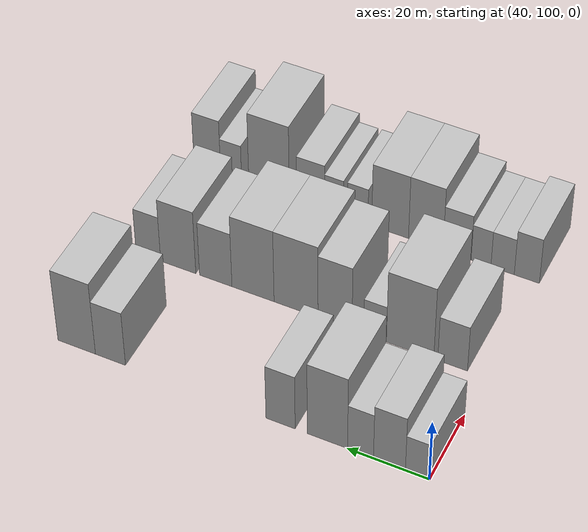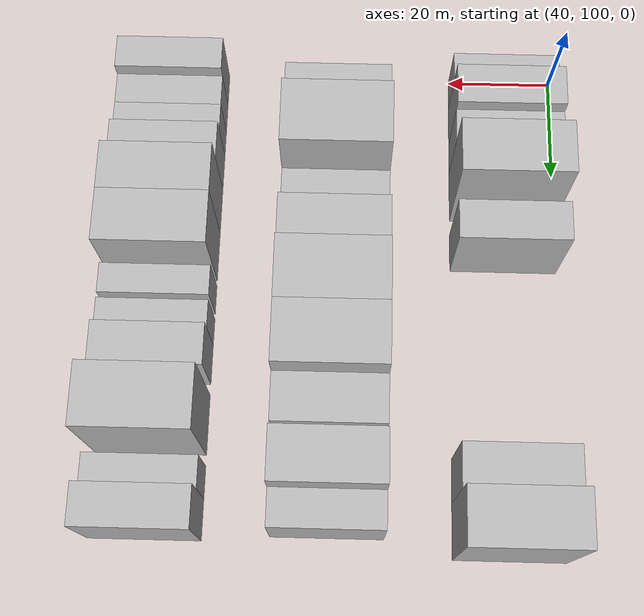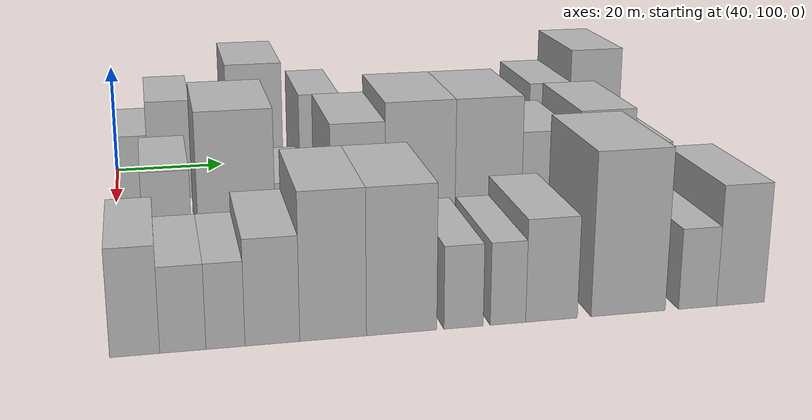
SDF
<sdf version="1.6">
 <world name="default">
  <model name="building_49">
   <static>1</static>
   <pose>50.0000 102.8919 0 0.000000 0.000000 0.000000</pose>
   <link name="link">
    <pose>0 0 6.00 0 0 0</pose>
    <collision name="collision"><geometry><box><size>20.0000 5.7560 12.0000</size></box></geometry></collision>
    <visual name="visual">
     <cast_shadows>0</cast_shadows>
     <geometry><box><size>20.0000 5.7560 12.0000</size></box></geometry>
     <material>
      <script>
       <uri>model://HANNAS_wall/materials/scripts</uri>
       <uri>model://HANNAS_wall/materials/textures</uri>
       <name>vrc/HANNAS_wall</name>
      </script>
     </material>
    </visual>
   </link>
  </model>
  <model name="building_50">
   <static>1</static>
   <pose>50.0000 109.6371 0 0.000000 0.000000 0.000000</pose>
   <link name="link">
    <pose>0 0 9.00 0 0 0</pose>
    <collision name="collision"><geometry><box><size>20.0000 7.7343 18.0000</size></box></geometry></collision>
    <visual name="visual">
     <cast_shadows>0</cast_shadows>
     <geometry><box><size>20.0000 7.7343 18.0000</size></box></geometry>
     <material>
      <script>
       <uri>model://HANNAS_wall/materials/scripts</uri>
       <uri>model://HANNAS_wall/materials/textures</uri>
       <name>vrc/HANNAS_wall</name>
      </script>
     </material>
    </visual>
   </link>
  </model>
  <model name="building_51">
   <static>1</static>
   <pose>50.0000 116.6719 0 0.000000 0.000000 0.000000</pose>
   <link name="link">
    <pose>0 0 7.50 0 0 0</pose>
    <collision name="collision"><geometry><box><size>20.0000 6.3353 15.0000</size></box></geometry></collision>
    <visual name="visual">
     <cast_shadows>0</cast_shadows>
     <geometry><box><size>20.0000 6.3353 15.0000</size></box></geometry>
     <material>
      <script>
       <uri>model://HANNAS_wall/materials/scripts</uri>
       <uri>model://HANNAS_wall/materials/textures</uri>
       <name>vrc/HANNAS_wall</name>
      </script>
     </material>
    </visual>
   </link>
  </model>
  <model name="building_52">
   <static>1</static>
   <pose>50.0000 124.7940 0 0.000000 0.000000 0.000000</pose>
   <link name="link">
    <pose>0 0 12.00 0 0 0</pose>
    <collision name="collision"><geometry><box><size>20.0000 9.9088 24.0000</size></box></geometry></collision>
    <visual name="visual">
     <cast_shadows>0</cast_shadows>
     <geometry><box><size>20.0000 9.9088 24.0000</size></box></geometry>
     <material>
      <script>
       <uri>model://HANNAS_wall/materials/scripts</uri>
       <uri>model://HANNAS_wall/materials/textures</uri>
       <name>vrc/HANNAS_wall</name>
      </script>
     </material>
    </visual>
   </link>
  </model>
  <model name="building_53">
   <static>1</static>
   <pose>50.0000 136.3859 0 0.000000 0.000000 0.000000</pose>
   <link name="link">
    <pose>0 0 9.00 0 0 0</pose>
    <collision name="collision"><geometry><box><size>20.0000 7.2751 18.0000</size></box></geometry></collision>
    <visual name="visual">
     <cast_shadows>0</cast_shadows>
     <geometry><box><size>20.0000 7.2751 18.0000</size></box></geometry>
     <material>
      <script>
       <uri>model://HANNAS_wall/materials/scripts</uri>
       <uri>model://HANNAS_wall/materials/textures</uri>
       <name>vrc/HANNAS_wall</name>
      </script>
     </material>
    </visual>
   </link>
  </model>
  <model name="building_54">
   <static>1</static>
   <pose>50.0000 179.7932 0 0.000000 0.000000 0.000000</pose>
   <link name="link">
    <pose>0 0 9.00 0 0 0</pose>
    <collision name="collision"><geometry><box><size>20.0000 7.8465 18.0000</size></box></geometry></collision>
    <visual name="visual">
     <cast_shadows>0</cast_shadows>
     <geometry><box><size>20.0000 7.8465 18.0000</size></box></geometry>
     <material>
      <script>
       <uri>model://HANNAS_wall/materials/scripts</uri>
       <uri>model://HANNAS_wall/materials/textures</uri>
       <name>vrc/HANNAS_wall</name>
      </script>
     </material>
    </visual>
   </link>
  </model>
  <model name="building_55">
   <static>1</static>
   <pose>50.0000 188.6516 0 0.000000 0.000000 0.000000</pose>
   <link name="link">
    <pose>0 0 12.00 0 0 0</pose>
    <collision name="collision"><geometry><box><size>20.0000 9.8704 24.0000</size></box></geometry></collision>
    <visual name="visual">
     <cast_shadows>0</cast_shadows>
     <geometry><box><size>20.0000 9.8704 24.0000</size></box></geometry>
     <material>
      <script>
       <uri>model://HANNAS_wall/materials/scripts</uri>
       <uri>model://HANNAS_wall/materials/textures</uri>
       <name>vrc/HANNAS_wall</name>
      </script>
     </material>
    </visual>
   </link>
  </model>
  <model name="building_121">
   <static>1</static>
   <pose>82.0000 108.1798 0 0.000000 0.000000 0.000000</pose>
   <link name="link">
    <pose>0 0 7.50 0 0 0</pose>
    <collision name="collision"><geometry><box><size>20.0000 7.3881 15.0000</size></box></geometry></collision>
    <visual name="visual">
     <cast_shadows>0</cast_shadows>
     <geometry><box><size>20.0000 7.3881 15.0000</size></box></geometry>
     <material>
      <script>
       <uri>model://HANNAS_wall/materials/scripts</uri>
       <uri>model://HANNAS_wall/materials/textures</uri>
       <name>vrc/HANNAS_wall</name>
      </script>
     </material>
    </visual>
   </link>
  </model>
  <model name="building_122">
   <static>1</static>
   <pose>82.0000 118.8424 0 0.000000 0.000000 0.000000</pose>
   <link name="link">
    <pose>0 0 12.00 0 0 0</pose>
    <collision name="collision"><geometry><box><size>20.0000 11.9371 24.0000</size></box></geometry></collision>
    <visual name="visual">
     <cast_shadows>0</cast_shadows>
     <geometry><box><size>20.0000 11.9371 24.0000</size></box></geometry>
     <material>
      <script>
       <uri>model://HANNAS_wall/materials/scripts</uri>
       <uri>model://HANNAS_wall/materials/textures</uri>
       <name>vrc/HANNAS_wall</name>
      </script>
     </material>
    </visual>
   </link>
  </model>
  <model name="building_123">
   <static>1</static>
   <pose>82.0000 127.6816 0 0.000000 0.000000 0.000000</pose>
   <link name="link">
    <pose>0 0 6.00 0 0 0</pose>
    <collision name="collision"><geometry><box><size>20.0000 5.7413 12.0000</size></box></geometry></collision>
    <visual name="visual">
     <cast_shadows>0</cast_shadows>
     <geometry><box><size>20.0000 5.7413 12.0000</size></box></geometry>
     <material>
      <script>
       <uri>model://HANNAS_wall/materials/scripts</uri>
       <uri>model://HANNAS_wall/materials/textures</uri>
       <name>vrc/HANNAS_wall</name>
      </script>
     </material>
    </visual>
   </link>
  </model>
  <model name="building_124">
   <static>1</static>
   <pose>82.0000 137.9189 0 0.000000 0.000000 0.000000</pose>
   <link name="link">
    <pose>0 0 10.50 0 0 0</pose>
    <collision name="collision"><geometry><box><size>20.0000 8.7333 21.0000</size></box></geometry></collision>
    <visual name="visual">
     <cast_shadows>0</cast_shadows>
     <geometry><box><size>20.0000 8.7333 21.0000</size></box></geometry>
     <material>
      <script>
       <uri>model://HANNAS_wall/materials/scripts</uri>
       <uri>model://HANNAS_wall/materials/textures</uri>
       <name>vrc/HANNAS_wall</name>
      </script>
     </material>
    </visual>
   </link>
  </model>
  <model name="building_125">
   <static>1</static>
   <pose>82.0000 147.9809 0 0.000000 0.000000 0.000000</pose>
   <link name="link">
    <pose>0 0 12.00 0 0 0</pose>
    <collision name="collision"><geometry><box><size>20.0000 11.3906 24.0000</size></box></geometry></collision>
    <visual name="visual">
     <cast_shadows>0</cast_shadows>
     <geometry><box><size>20.0000 11.3906 24.0000</size></box></geometry>
     <material>
      <script>
       <uri>model://HANNAS_wall/materials/scripts</uri>
       <uri>model://HANNAS_wall/materials/textures</uri>
       <name>vrc/HANNAS_wall</name>
      </script>
     </material>
    </visual>
   </link>
  </model>
  <model name="building_126">
   <static>1</static>
   <pose>82.0000 159.2081 0 0.000000 0.000000 0.000000</pose>
   <link name="link">
    <pose>0 0 12.00 0 0 0</pose>
    <collision name="collision"><geometry><box><size>20.0000 11.0638 24.0000</size></box></geometry></collision>
    <visual name="visual">
     <cast_shadows>0</cast_shadows>
     <geometry><box><size>20.0000 11.0638 24.0000</size></box></geometry>
     <material>
      <script>
       <uri>model://HANNAS_wall/materials/scripts</uri>
       <uri>model://HANNAS_wall/materials/textures</uri>
       <name>vrc/HANNAS_wall</name>
      </script>
     </material>
    </visual>
   </link>
  </model>
  <model name="building_127">
   <static>1</static>
   <pose>82.0000 169.0322 0 0.000000 0.000000 0.000000</pose>
   <link name="link">
    <pose>0 0 9.00 0 0 0</pose>
    <collision name="collision"><geometry><box><size>20.0000 8.5844 18.0000</size></box></geometry></collision>
    <visual name="visual">
     <cast_shadows>0</cast_shadows>
     <geometry><box><size>20.0000 8.5844 18.0000</size></box></geometry>
     <material>
      <script>
       <uri>model://HANNAS_wall/materials/scripts</uri>
       <uri>model://HANNAS_wall/materials/textures</uri>
       <name>vrc/HANNAS_wall</name>
      </script>
     </material>
    </visual>
   </link>
  </model>
  <model name="building_128">
   <static>1</static>
   <pose>82.0000 179.0316 0 0.000000 0.000000 0.000000</pose>
   <link name="link">
    <pose>0 0 10.50 0 0 0</pose>
    <collision name="collision"><geometry><box><size>20.0000 9.4143 21.0000</size></box></geometry></collision>
    <visual name="visual">
     <cast_shadows>0</cast_shadows>
     <geometry><box><size>20.0000 9.4143 21.0000</size></box></geometry>
     <material>
      <script>
       <uri>model://HANNAS_wall/materials/scripts</uri>
       <uri>model://HANNAS_wall/materials/textures</uri>
       <name>vrc/HANNAS_wall</name>
      </script>
     </material>
    </visual>
   </link>
  </model>
  <model name="building_129">
   <static>1</static>
   <pose>82.0000 187.0549 0 0.000000 0.000000 0.000000</pose>
   <link name="link">
    <pose>0 0 7.50 0 0 0</pose>
    <collision name="collision"><geometry><box><size>20.0000 6.6323 15.0000</size></box></geometry></collision>
    <visual name="visual">
     <cast_shadows>0</cast_shadows>
     <geometry><box><size>20.0000 6.6323 15.0000</size></box></geometry>
     <material>
      <script>
       <uri>model://HANNAS_wall/materials/scripts</uri>
       <uri>model://HANNAS_wall/materials/textures</uri>
       <name>vrc/HANNAS_wall</name>
      </script>
     </material>
    </visual>
   </link>
  </model>
  <model name="building_193">
   <static>1</static>
   <pose>114.0000 102.8141 0 0.000000 0.000000 0.000000</pose>
   <link name="link">
    <pose>0 0 7.50 0 0 0</pose>
    <collision name="collision"><geometry><box><size>20.0000 6.4036 15.0000</size></box></geometry></collision>
    <visual name="visual">
     <cast_shadows>0</cast_shadows>
     <geometry><box><size>20.0000 6.4036 15.0000</size></box></geometry>
     <material>
      <script>
       <uri>model://HANNAS_wall/materials/scripts</uri>
       <uri>model://HANNAS_wall/materials/textures</uri>
       <name>vrc/HANNAS_wall</name>
      </script>
     </material>
    </visual>
   </link>
  </model>
  <model name="building_194">
   <static>1</static>
   <pose>114.0000 109.0069 0 0.000000 0.000000 0.000000</pose>
   <link name="link">
    <pose>0 0 6.00 0 0 0</pose>
    <collision name="collision"><geometry><box><size>20.0000 5.9820 12.0000</size></box></geometry></collision>
    <visual name="visual">
     <cast_shadows>0</cast_shadows>
     <geometry><box><size>20.0000 5.9820 12.0000</size></box></geometry>
     <material>
      <script>
       <uri>model://HANNAS_wall/materials/scripts</uri>
       <uri>model://HANNAS_wall/materials/textures</uri>
       <name>vrc/HANNAS_wall</name>
      </script>
     </material>
    </visual>
   </link>
  </model>
  <model name="building_195">
   <static>1</static>
   <pose>114.0000 114.5570 0 0.000000 0.000000 0.000000</pose>
   <link name="link">
    <pose>0 0 6.00 0 0 0</pose>
    <collision name="collision"><geometry><box><size>20.0000 5.1183 12.0000</size></box></geometry></collision>
    <visual name="visual">
     <cast_shadows>0</cast_shadows>
     <geometry><box><size>20.0000 5.1183 12.0000</size></box></geometry>
     <material>
      <script>
       <uri>model://HANNAS_wall/materials/scripts</uri>
       <uri>model://HANNAS_wall/materials/textures</uri>
       <name>vrc/HANNAS_wall</name>
      </script>
     </material>
    </visual>
   </link>
  </model>
  <model name="building_196">
   <static>1</static>
   <pose>114.0000 120.7484 0 0.000000 0.000000 0.000000</pose>
   <link name="link">
    <pose>0 0 7.50 0 0 0</pose>
    <collision name="collision"><geometry><box><size>20.0000 7.2645 15.0000</size></box></geometry></collision>
    <visual name="visual">
     <cast_shadows>0</cast_shadows>
     <geometry><box><size>20.0000 7.2645 15.0000</size></box></geometry>
     <material>
      <script>
       <uri>model://HANNAS_wall/materials/scripts</uri>
       <uri>model://HANNAS_wall/materials/textures</uri>
       <name>vrc/HANNAS_wall</name>
      </script>
     </material>
    </visual>
   </link>
  </model>
  <model name="building_197">
   <static>1</static>
   <pose>114.0000 128.8993 0 0.000000 0.000000 0.000000</pose>
   <link name="link">
    <pose>0 0 10.50 0 0 0</pose>
    <collision name="collision"><geometry><box><size>20.0000 9.0373 21.0000</size></box></geometry></collision>
    <visual name="visual">
     <cast_shadows>0</cast_shadows>
     <geometry><box><size>20.0000 9.0373 21.0000</size></box></geometry>
     <material>
      <script>
       <uri>model://HANNAS_wall/materials/scripts</uri>
       <uri>model://HANNAS_wall/materials/textures</uri>
       <name>vrc/HANNAS_wall</name>
      </script>
     </material>
    </visual>
   </link>
  </model>
  <model name="building_198">
   <static>1</static>
   <pose>114.0000 138.2753 0 0.000000 0.000000 0.000000</pose>
   <link name="link">
    <pose>0 0 10.50 0 0 0</pose>
    <collision name="collision"><geometry><box><size>20.0000 9.7147 21.0000</size></box></geometry></collision>
    <visual name="visual">
     <cast_shadows>0</cast_shadows>
     <geometry><box><size>20.0000 9.7147 21.0000</size></box></geometry>
     <material>
      <script>
       <uri>model://HANNAS_wall/materials/scripts</uri>
       <uri>model://HANNAS_wall/materials/textures</uri>
       <name>vrc/HANNAS_wall</name>
      </script>
     </material>
    </visual>
   </link>
  </model>
  <model name="building_199">
   <static>1</static>
   <pose>114.0000 146.9001 0 0.000000 0.000000 0.000000</pose>
   <link name="link">
    <pose>0 0 6.00 0 0 0</pose>
    <collision name="collision"><geometry><box><size>20.0000 5.5349 12.0000</size></box></geometry></collision>
    <visual name="visual">
     <cast_shadows>0</cast_shadows>
     <geometry><box><size>20.0000 5.5349 12.0000</size></box></geometry>
     <material>
      <script>
       <uri>model://HANNAS_wall/materials/scripts</uri>
       <uri>model://HANNAS_wall/materials/textures</uri>
       <name>vrc/HANNAS_wall</name>
      </script>
     </material>
    </visual>
   </link>
  </model>
  <model name="building_200">
   <static>1</static>
   <pose>114.0000 153.1999 0 0.000000 0.000000 0.000000</pose>
   <link name="link">
    <pose>0 0 6.00 0 0 0</pose>
    <collision name="collision"><geometry><box><size>20.0000 5.0647 12.0000</size></box></geometry></collision>
    <visual name="visual">
     <cast_shadows>0</cast_shadows>
     <geometry><box><size>20.0000 5.0647 12.0000</size></box></geometry>
     <material>
      <script>
       <uri>model://HANNAS_wall/materials/scripts</uri>
       <uri>model://HANNAS_wall/materials/textures</uri>
       <name>vrc/HANNAS_wall</name>
      </script>
     </material>
    </visual>
   </link>
  </model>
  <model name="building_201">
   <static>1</static>
   <pose>114.0000 159.4773 0 0.000000 0.000000 0.000000</pose>
   <link name="link">
    <pose>0 0 7.50 0 0 0</pose>
    <collision name="collision"><geometry><box><size>20.0000 7.4902 15.0000</size></box></geometry></collision>
    <visual name="visual">
     <cast_shadows>0</cast_shadows>
     <geometry><box><size>20.0000 7.4902 15.0000</size></box></geometry>
     <material>
      <script>
       <uri>model://HANNAS_wall/materials/scripts</uri>
       <uri>model://HANNAS_wall/materials/textures</uri>
       <name>vrc/HANNAS_wall</name>
      </script>
     </material>
    </visual>
   </link>
  </model>
  <model name="building_202">
   <static>1</static>
   <pose>114.0000 170.7312 0 0.000000 0.000000 0.000000</pose>
   <link name="link">
    <pose>0 0 12.00 0 0 0</pose>
    <collision name="collision"><geometry><box><size>20.0000 11.0175 24.0000</size></box></geometry></collision>
    <visual name="visual">
     <cast_shadows>0</cast_shadows>
     <geometry><box><size>20.0000 11.0175 24.0000</size></box></geometry>
     <material>
      <script>
       <uri>model://HANNAS_wall/materials/scripts</uri>
       <uri>model://HANNAS_wall/materials/textures</uri>
       <name>vrc/HANNAS_wall</name>
      </script>
     </material>
    </visual>
   </link>
  </model>
  <model name="building_203">
   <static>1</static>
   <pose>114.0000 181.1240 0 0.000000 0.000000 0.000000</pose>
   <link name="link">
    <pose>0 0 6.00 0 0 0</pose>
    <collision name="collision"><geometry><box><size>20.0000 5.7682 12.0000</size></box></geometry></collision>
    <visual name="visual">
     <cast_shadows>0</cast_shadows>
     <geometry><box><size>20.0000 5.7682 12.0000</size></box></geometry>
     <material>
      <script>
       <uri>model://HANNAS_wall/materials/scripts</uri>
       <uri>model://HANNAS_wall/materials/textures</uri>
       <name>vrc/HANNAS_wall</name>
      </script>
     </material>
    </visual>
   </link>
  </model>
  <model name="building_204">
   <static>1</static>
   <pose>114.0000 187.6835 0 0.000000 0.000000 0.000000</pose>
   <link name="link">
    <pose>0 0 9.00 0 0 0</pose>
    <collision name="collision"><geometry><box><size>20.0000 7.3507 18.0000</size></box></geometry></collision>
    <visual name="visual">
     <cast_shadows>0</cast_shadows>
     <geometry><box><size>20.0000 7.3507 18.0000</size></box></geometry>
     <material>
      <script>
       <uri>model://HANNAS_wall/materials/scripts</uri>
       <uri>model://HANNAS_wall/materials/textures</uri>
       <name>vrc/HANNAS_wall</name>
      </script>
     </material>
    </visual>
   </link>
  </model>
 </world>
</sdf>
